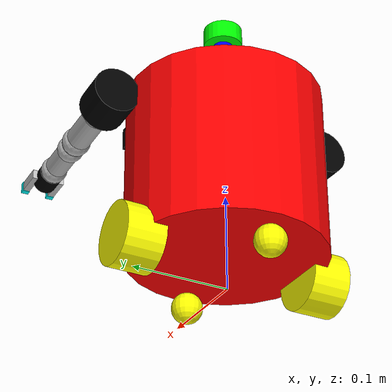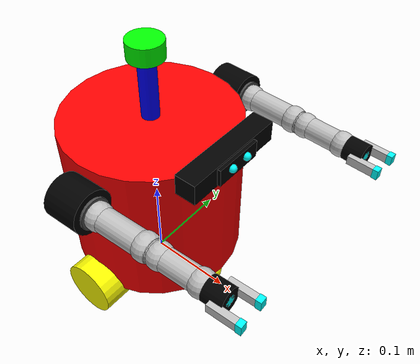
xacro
<?xml version="1.0"?>
<robot xmlns:xacro="http://www.ros.org/wiki/xacro" name="fishbot">

<!-- 找到share目录下的该包:$(find robot_rl_description) -->

<!-- 通用颜色 -->
<xacro:include filename="$(find robot_rl_description)/urdf/fishbot/common/common_colors.xacro"/>

<!-- 基座base部分 -->
<xacro:include filename="$(find robot_rl_description)/urdf/fishbot/base.urdf.xacro"/>
<!-- 传感器senser部分 -->
<xacro:include filename="$(find robot_rl_description)/urdf/fishbot/senser/imu.urdf.xacro"/>
<xacro:include filename="$(find robot_rl_description)/urdf/fishbot/senser/laser.urdf.xacro"/>
<xacro:include filename="$(find robot_rl_description)/urdf/fishbot/senser/camera.urdf.xacro"/>
<!-- 执行器actuator部分 -->
<xacro:include filename="$(find robot_rl_description)/urdf/fishbot/actuator/wheel.urdf.xacro"/>
<xacro:include filename="$(find robot_rl_description)/urdf/fishbot/actuator/caster.urdf.xacro"/>
<xacro:include filename="$(find robot_rl_description)/urdf/fishbot/actuator/manipulator.urdf.xacro"/>
<!-- 插件:双轮差速、传感器（雷达、imu） -->
<!-- ros2_control和gazebo_control同时出现，会产生冲突 -->
<xacro:include filename="$(find robot_rl_description)/urdf/fishbot/plugins/gazebo_sensor_plugin.xacro"/>
<!-- 硬件控制ros2_control -->
<xacro:include filename="$(find robot_rl_description)/urdf/fishbot/fishbot.ros2_control.xacro"/>

<!-- 基座 -->
<xacro:base_xacro length="0.18" radius="0.10"/>

<!-- 传感器 -->
<xacro:imu_xacro xyz="0.0 0.0 0.02"/>
<xacro:camera_xacro xyz="0.10 0.0 0.090"/>
<xacro:laser_xacro xyz="0.0 0.0 0.110"/>

<!-- 执行器 -->
<xacro:wheel_xacro wheel_name="left_wheel" xyz="0 0.10 -0.092" />
<xacro:wheel_xacro wheel_name="right_wheel" xyz="0 -0.10 -0.092" />
<xacro:caster_xacro caster_name="front_caster" xyz="0.08 0.0 -0.108" />
<xacro:caster_xacro caster_name="back_caster" xyz="-0.08 0.0 -0.108" />

<!-- 左右双臂：两个主要关节 + 简化机械爪 -->
<xacro:arm_macro prefix="left" side_sign="1"/>
<xacro:arm_macro prefix="right" side_sign="-1"/>

<!-- 插件:双轮差速、传感器（雷达） -->
<xacro:gazebo_sensor_plugin />

<!-- ros2_control控制 -->
<xacro:fishbot_ros2_control />

</robot>

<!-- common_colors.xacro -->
<robot xmlns:xacro="http://www.ros.org/wiki/xacro">

    <!-- 机器人颜色定义文件 Robot Color Definitions -->

    <!-- 基础颜色 Basic Colors -->
    <material name="red_material">
        <color rgba="1.0 0.0 0.0 1.0"/>
    </material>

    <material name="blue_material">
        <color rgba="0.0 0.0 1.0 1.0"/>
    </material>

    <material name="green_material">
        <color rgba="0.0 1.0 0.0 1.0"/>
    </material>

    <material name="yellow_material">
        <color rgba="1.0 1.0 0.0 1.0"/>
    </material>

    <material name="orange_material">
        <color rgba="1.0 0.5 0.0 1.0"/>
    </material>

    <material name="purple_material">
        <color rgba="0.5 0.0 0.5 1.0"/>
    </material>

    <material name="pink_material">
        <color rgba="1.0 0.5 0.8 1.0"/>
    </material>

    <material name="cyan_material">
        <color rgba="0.0 1.0 1.0 1.0"/>
    </material>

    <!-- 深色系列 Dark Colors -->
    <material name="dark_red_material">
        <color rgba="0.8 0.0 0.0 1.0"/>
    </material>

    <material name="dark_blue_material">
        <color rgba="0.0 0.0 0.8 1.0"/>
    </material>

    <material name="dark_green_material">
        <color rgba="0.0 0.8 0.0 1.0"/>
    </material>

    <material name="dark_yellow_material">
        <color rgba="0.8 0.8 0.0 1.0"/>
    </material>

    <!-- 浅色系列 Light Colors -->
    <material name="light_red_material">
        <color rgba="1.0 0.5 0.5 1.0"/>
    </material>

    <material name="light_blue_material">
        <color rgba="0.5 0.5 1.0 1.0"/>
    </material>

    <material name="light_green_material">
        <color rgba="0.5 1.0 0.5 1.0"/>
    </material>

    <material name="light_yellow_material">
        <color rgba="1.0 1.0 0.5 1.0"/>
    </material>

    <!-- 灰度系列 Gray Scale -->
    <material name="white_material">
        <color rgba="1.0 1.0 1.0 1.0"/>
    </material>

    <material name="light_gray_material">
        <color rgba="0.8 0.8 0.8 1.0"/>
    </material>

    <material name="gray_material">
        <color rgba="0.5 0.5 0.5 1.0"/>
    </material>

    <material name="dark_gray_material">
        <color rgba="0.3 0.3 0.3 1.0"/>
    </material>

    <material name="black_material">
        <color rgba="0.0 0.0 0.0 1.0"/>
    </material>

    <!-- 金属色 Metallic Colors -->
    <material name="gold_material">
        <color rgba="1.0 0.8 0.0 1.0"/>
    </material>

    <material name="silver_material">
        <color rgba="0.75 0.75 0.75 1.0"/>
    </material>

    <material name="bronze_material">
        <color rgba="0.8 0.5 0.2 1.0"/>
    </material>

    <material name="copper_material">
        <color rgba="0.7 0.4 0.1 1.0"/>
    </material>

    <!-- 机器人专用色 Robot Specific Colors -->
    <material name="robot_base_material">
        <color rgba="0.2 0.2 0.2 1.0"/>
    </material>

    <material name="wheel_material">
        <color rgba="0.1 0.1 0.1 1.0"/>
    </material>

    <material name="sensor_material">
        <color rgba="0.0 0.3 0.8 1.0"/>
    </material>

    <material name="lidar_material">
        <color rgba="0.8 0.0 0.0 1.0"/>
    </material>

    <material name="camera_material">
        <color rgba="0.1 0.1 0.1 1.0"/>
    </material>

    <!-- 特殊颜色 Special Colors -->
    <material name="sky_blue_material">
        <color rgba="0.5 0.8 1.0 1.0"/>
    </material>

    <material name="forest_green_material">
        <color rgba="0.2 0.8 0.2 1.0"/>
    </material>

    <material name="hot_pink_material">
        <color rgba="1.0 0.4 0.7 1.0"/>
    </material>

    <material name="magenta_material">
        <color rgba="1.0 0.0 1.0 1.0"/>
    </material>

    <!-- 半透明色 Transparent Colors -->
    <material name="transparent_red_material">
        <color rgba="1.0 0.0 0.0 0.5"/>
    </material>

    <material name="transparent_blue_material">
        <color rgba="0.0 0.0 1.0 0.5"/>
    </material>

    <material name="transparent_green_material">
        <color rgba="0.0 1.0 0.0 0.5"/>
    </material>

    <material name="transparent_yellow_material">
        <color rgba="1.0 1.0 0.0 0.5"/>
    </material>

</robot>

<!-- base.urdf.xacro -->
<!-- base部分子文件 -->
<robot xmlns:xacro="http://www.ros.org/wiki/xacro">
    <xacro:include filename="$(find robot_rl_description)/urdf/fishbot/common/common_inertia.xacro"/>

    <!-- 1.基本模型添加 -->
    <xacro:macro name="base_xacro" params="length radius">
        <!-- 1.1添加base_footprint链接作为根链接 -->
        <link name="base_footprint">
            <visual>
                <origin xyz="0 0 0" rpy="0 0 0"/>
                <geometry>
                    <box size="0.001 0.001 0.001"/>
                </geometry>
            </visual>
        </link>

        <!-- 1.2添加base_joint连接base_footprint到base_link -->
        <joint name="base_joint" type="fixed">
            <parent link="base_footprint"/>
            <child link="base_link"/>
            <!-- 将除轮子外的整机整体抬高一个轮子半径，保证底盘离地 -->
            <origin xyz="0.0 0.0 ${length/2 + 0.032}" rpy="0 0 0"/>
        </joint>

        <link name="base_link">
            <visual>
                <origin xyz="0 0 0" rpy="0 0 0"/>
                <geometry>
                    <cylinder radius="${radius}" length="${length}"/>
                </geometry>
                <material name="red_material"/>
            </visual>

            <!-- 2.碰撞属性collision添加 -->
            <collision>
                <origin xyz="0 0 0" rpy="0 0 0"/>
                <geometry>
                    <cylinder radius="${radius}" length="${length}"/>
                </geometry>
                <material name="red_material"/>
            </collision>

            <!-- 3.质量和惯性属性添加 -->
            <xacro:cylinder_inertia m="1.0" r="${radius}" h="${length}"/>
        </link>

        <!-- 4.gazebo中显示，扩展URDF文件 -->
        <gazebo reference="base_link">
            <material>Gazebo/Red</material>
        </gazebo>

    </xacro:macro>
</robot>

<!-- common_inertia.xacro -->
<robot xmlns:xacro="http://ros.org/wiki/xacro">

  <xacro:macro name="box_inertia" params="l w h m">
    <inertial>
      <!-- Mass of the box -->
      <mass value="${m}" />

      <!-- Inertia tensor components -->
      <inertia
        ixx="${(m/12) * (h*h + w*w)}"
        ixy="0.0"
        ixz="0.0"
        iyy="${(m/12) * (l*l + h*h)}"
        iyz="0.0"
        izz="${(m/12) * (l*l + w*w)}" />
    </inertial>
  </xacro:macro>

  <xacro:macro name="cylinder_inertia" params="m r h">
    <inertial>
      <!-- Mass of the cylinder -->
      <mass value="${m}" />

      <!-- Inertia tensor components -->
      <inertia
        ixx="${(m/12) * (3*r*r + h*h)}"
        ixy="0"
        ixz="0"
        iyy="${(m/12) * (3*r*r + h*h)}"
        iyz="0"
        izz="${(m/2) * (r*r)}" />
    </inertial>
  </xacro:macro>

  <xacro:macro name="sphere_inertia" params="m r">
    <inertial>
      <!-- Mass of the sphere -->
      <mass value="${m}" />

      <!-- Inertia tensor components -->
      <inertia
        ixx="${(2/5) * m * (r*r)}"
        ixy="0.0"
        ixz="0.0"
        iyy="${(2/5) * m * (r*r)}"
        iyz="0.0"
        izz="${(2/5) * m * (r*r)}" />
    </inertial>
  </xacro:macro>

</robot>

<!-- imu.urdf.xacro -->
<!-- 机器人imu惯性测量模块 -->
<robot xmlns:xacro="http://www.ros.org/wiki/xacro">
    <xacro:include filename="$(find robot_rl_description)/urdf/fishbot/common/common_inertia.xacro"/>

    <!-- 1.基本模型添加 -->
    <xacro:macro name="imu_xacro" params="xyz">
        <link name="imu_link">
            <visual>
                <origin xyz="0 0 0" rpy="0 0 0"/>
                <geometry>
                    <box size="0.02 0.02 0.02"/>
                </geometry>
                <material name="black_material"/>
            </visual>

            <!-- 2.碰撞属性collision添加 -->
            <collision>
                <origin xyz="0 0 0" rpy="0 0 0"/>
                <geometry>
                    <box size="0.02 0.02 0.02"/>
                </geometry>
                <material name="black_material"/>
            </collision>

            <!-- 3.质量和惯性属性添加 -->
            <xacro:box_inertia m="0.05" w="0.02" h="0.02" l="0.02" />
        </link>

        <joint name="imu_joint" type="fixed">
            <parent link="base_link"/>
            <child link="imu_link"/>
            <origin xyz="${xyz}" rpy="0 0 0"/>
        </joint>

        <!-- 4.gazebo中显示，扩展URDF文件 -->
        <gazebo reference="imu_link">
            <material>Gazebo/Black</material>
        </gazebo>

    </xacro:macro>
</robot>

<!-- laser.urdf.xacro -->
<!-- 机器人laser雷达模块 -->
<robot xmlns:xacro="http://www.ros.org/wiki/xacro">
    <xacro:include filename="$(find robot_rl_description)/urdf/fishbot/common/common_inertia.xacro"/>

    <!-- 1.基本模型添加 -->
    <xacro:macro name="laser_xacro" params="xyz">
        <!-- 1.1雷达支撑杆 -->
        <link name="laser_cylinder_link">
            <visual>
                <origin xyz="0 0 0" rpy="0 0 0"/>
                <geometry>
                    <cylinder radius="0.01" length="0.12"/>
                </geometry>
                <material name="blue_material"/>
            </visual>

            <!-- 2.1碰撞属性collision添加 -->
            <collision>
                <origin xyz="0 0 0" rpy="0 0 0"/>
                <geometry>
                    <cylinder radius="0.01" length="0.12"/>
                </geometry>
                <material name="blue_material"/>
            </collision>

            <!-- 3.1质量和惯性属性添加 -->
            <xacro:cylinder_inertia m="0.05" r="0.01" h="0.12"/>
        </link>

        <!-- 1.2雷达 -->
        <link name="laser_link">
            <visual>
                <origin xyz="0 0 0" rpy="0 0 0"/>
                <geometry>
                    <cylinder radius="0.02" length="0.02"/>
                </geometry>
                <material name="green_material"/>
            </visual>

            <!-- 2.2碰撞属性collision添加 -->
            <collision>
                <origin xyz="0 0 0" rpy="0 0 0"/>
                <geometry>
                    <cylinder radius="0.02" length="0.02"/>
                </geometry>
                <material name="green_material"/>
            </collision>

            <!-- 3.2质量和惯性属性添加 -->
            <xacro:cylinder_inertia m="0.10" r="0.02" h="0.02"/>
        </link>

        <!-- 4.1雷达固定到支撑杆上 -->
        <joint name="laser_joint" type="fixed">
            <parent link="laser_cylinder_link"/>
            <child link="laser_link"/>
            <origin xyz="0.0 0.0 0.06" rpy="0 0 0"/>
        </joint>

        <!-- 4.2雷达支撑杆固定到base_link -->
        <joint name="laser_cylinder_joint" type="fixed">
            <parent link="base_link"/>
            <child link="laser_cylinder_link"/>
            <!-- 用户自定义组装  雷达+雷达支撑杆的位置：${xyz}  -->
            <origin xyz="${xyz}" rpy="0 0 0"/>
        </joint>

        <!-- 5.gazebo中显示，扩展URDF文件 -->
        <gazebo reference="laser_cylinder_link">
            <material>Gazebo/Blue</material>
        </gazebo>
        <gazebo reference="laser_link">
            <material>Gazebo/Green</material>
        </gazebo>

    </xacro:macro>
</robot>

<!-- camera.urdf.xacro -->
<!-- 机器人camera相机模块 -->
<robot xmlns:xacro="http://www.ros.org/wiki/xacro">
    <xacro:include filename="$(find robot_rl_description)/urdf/fishbot/common/common_inertia.xacro"/>

    <!-- 1.基本模型添加 -->
    <xacro:macro name="camera_xacro" params="xyz">
        <link name="camera_link">
            <visual>
                <origin xyz="0 0 0" rpy="0 0 0"/>
                <geometry>
                    <box size="0.024 0.12 0.024"/>
                </geometry>
                <material name="black_material"/>
            </visual>

            <!-- 2.碰撞属性collision添加 -->
            <collision>
                <origin xyz="0 0 0" rpy="0 0 0"/>
                <geometry>
                    <box size="0.024 0.12 0.024"/>
                </geometry>
                <material name="black_material"/>
            </collision>

            <!-- 3.质量和惯性属性添加 -->
            <xacro:box_inertia m="0.1" w="0.024" l="0.12" h="0.024" />
        </link>

        <!-- 4.深度相机辅助link -->
        <link name="camera_optical_link"></link>

        <!-- 5.1 相机与底盘固定关节 -->
        <joint name="camera_joint" type="fixed">
            <parent link="base_link"/>
            <child link="camera_link"/>
            <origin xyz="${xyz}" rpy="0 0 0"/>
        </joint>

        <!-- 5.2 相机与辅助坐标系固定关节 -->
        <joint name="camera_optical_joint" type="fixed">
            <parent link="camera_link"/>
            <child link="camera_optical_link"/>
            <!-- 通过旋转修正坐标系，使其符合 ROS 相机标准坐标系 -->
            <origin xyz="0 0 0" rpy="${-pi/2} 0.0 ${-pi/2}"/>
        </joint>

        <!-- 6.gazebo中显示，扩展URDF文件 -->
        <gazebo reference="camera_link">
            <material>Gazebo/Black</material>
        </gazebo>

        <!-- 前脸面板，只做视觉，不增加碰撞，便于挂双眼图案 -->
        <link name="camera_face_link">
            <visual>
                <origin xyz="0 0 0" rpy="0 0 0"/>
                <geometry>
                    <box size="0.004 0.056 0.020"/>
                </geometry>
                <material name="black_material"/>
            </visual>
            <xacro:box_inertia m="0.002" w="0.004" l="0.056" h="0.020"/>
        </link>
        <joint name="camera_face_joint" type="fixed">
            <parent link="camera_link"/>
            <child link="camera_face_link"/>
            <origin xyz="0.014 0 0" rpy="0 0 0"/>
        </joint>
        <gazebo reference="camera_face_link">
            <material>Gazebo/Black</material>
        </gazebo>

        <link name="camera_eye_left_link">
            <visual>
                <origin xyz="0 0 0" rpy="0 0 0"/>
                <geometry>
                    <sphere radius="0.0045"/>
                </geometry>
                <material name="cyan_material"/>
            </visual>
            <xacro:sphere_inertia m="0.0008" r="0.0045"/>
        </link>
        <joint name="camera_eye_left_joint" type="fixed">
            <parent link="camera_face_link"/>
            <child link="camera_eye_left_link"/>
            <origin xyz="0.003 0.011 0.002" rpy="0 0 0"/>
        </joint>
        <gazebo reference="camera_eye_left_link">
            <material>Gazebo/Cyan</material>
        </gazebo>

        <link name="camera_eye_right_link">
            <visual>
                <origin xyz="0 0 0" rpy="0 0 0"/>
                <geometry>
                    <sphere radius="0.0045"/>
                </geometry>
                <material name="cyan_material"/>
            </visual>
            <xacro:sphere_inertia m="0.0008" r="0.0045"/>
        </link>
        <joint name="camera_eye_right_joint" type="fixed">
            <parent link="camera_face_link"/>
            <child link="camera_eye_right_link"/>
            <origin xyz="0.003 -0.011 0.002" rpy="0 0 0"/>
        </joint>
        <gazebo reference="camera_eye_right_link">
            <material>Gazebo/Cyan</material>
        </gazebo>

    </xacro:macro>
</robot>

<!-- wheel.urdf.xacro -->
<!-- 机器人wheel车轮模块 -->
<robot xmlns:xacro="http://www.ros.org/wiki/xacro">
    <xacro:include filename="$(find robot_rl_description)/urdf/fishbot/common/common_inertia.xacro"/>

    <!-- 1.基本模型添加 -->
    <xacro:macro name="wheel_xacro" params="wheel_name xyz">
        <link name="${wheel_name}_link">
            <visual>
            <!-- 旋转90度 -->
                <origin xyz="0 0 0" rpy="1.57079 0 0"/>
                <geometry>
                    <cylinder radius="0.032" length="0.04"/>
                </geometry>
                <material name="yellow_material"/>
            </visual>

            <!-- 2.碰撞属性collision添加 -->
            <collision>
                <origin xyz="0 0 0" rpy="1.57079 0 0"/>
                <geometry>
                    <cylinder radius="0.032" length="0.04"/>
                </geometry>
                <material name="yellow_material"/>
            </collision>

            <!-- 3.质量和惯性属性添加 -->
            <xacro:cylinder_inertia m="0.05" r="0.032" h="0.04"/>
        </link>

        <joint name="${wheel_name}_joint" type="continuous">
            <parent link="base_link"/>
            <child link="${wheel_name}_link"/>
            <origin xyz="${xyz}" rpy="0 0 0"/>
            <!-- 绕哪个轴旋转:y轴 -->
            <axis xyz="0 1 0"/>
        </joint>

        <!-- 4.gazebo中显示，扩展URDF文件——给车轮添加物理属性(以下属性gazebo中默认为1.0) -->
        <gazebo reference="${wheel_name}_link">
            <material>Gazebo/Yellow</material>
            <!-- 切向摩擦系数 -->
            <mu1 value="20.0"/>
            <!-- 法向摩擦系数 -->
            <mu2 value="20.0"/>
            <!-- 接触刚度系数 -->
            <kp value="1000000000.0"/>
            <!-- 接触阻尼系数 -->
            <kd value="1.0"/>
        </gazebo>

    </xacro:macro>
</robot>

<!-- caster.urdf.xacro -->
<!-- 机器人caster万向轮模块 -->
<robot xmlns:xacro="http://www.ros.org/wiki/xacro">
    <xacro:include filename="$(find robot_rl_description)/urdf/fishbot/common/common_inertia.xacro"/>

    <!-- 1.基本模型添加 -->
    <xacro:macro name="caster_xacro" params="caster_name xyz">
        <link name="${caster_name}_link">
            <visual>
                <origin xyz="0 0 0" rpy="0 0 0"/>
                <geometry>
                    <sphere radius="0.016"/>
                </geometry>
                <material name="yellow_material"/>
            </visual>

            <!-- 2.碰撞属性collision添加 -->
            <collision>
                <origin xyz="0 0 0" rpy="0 0 0"/>
                <geometry>
                    <sphere radius="0.016"/>
                </geometry>
                <material name="yellow_material"/>
            </collision>

            <!-- 3.质量和惯性属性添加 -->
            <xacro:sphere_inertia m="0.05" r="0.016" />
        </link>

        <joint name="${caster_name}_joint" type="fixed">
            <parent link="base_link"/>
            <child link="${caster_name}_link"/>
            <origin xyz="${xyz}" rpy="0 0 0"/>
        </joint>

        <!-- 4.gazebo中显示，扩展URDF文件 -->
        <gazebo reference="${caster_name}_link">
            <material>Gazebo/Yellow</material>
            <!-- 切向摩擦系数 -->
            <mu1 value="0.0"/>
            <!-- 法向摩擦系数 -->
            <mu2 value="0.0"/>
            <!-- 接触刚度系数 -->
            <kp value="1000000000.0"/>
            <!-- 接触阻尼系数 -->
            <kd value="1.0"/>
        </gazebo>

    </xacro:macro>
</robot>

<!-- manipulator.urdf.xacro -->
<!-- 左右双臂：两主关节 + 两指平行夹爪 -->
<robot xmlns:xacro="http://www.ros.org/wiki/xacro">
    <xacro:include filename="$(find robot_rl_description)/urdf/fishbot/common/common_inertia.xacro"/>

    <!-- 肩部安装座，嵌入躯干侧壁 -->
    <xacro:property name="shoulder_socket_length" value="0.040"/>
    <xacro:property name="shoulder_socket_radius" value="0.024"/>
    <xacro:property name="shoulder_socket_collision_radius" value="0.016"/>
    <xacro:property name="shoulder_socket_collision_length" value="0.024"/>

    <!-- 两段主臂 -->
    <xacro:property name="upper_arm_length" value="0.074"/>
    <xacro:property name="upper_arm_radius" value="0.013"/>
    <xacro:property name="forearm_length" value="0.062"/>
    <xacro:property name="forearm_radius" value="0.012"/>

    <!-- 两指夹爪 -->
    <xacro:property name="gripper_base_length" value="0.022"/>
    <xacro:property name="gripper_base_radius" value="0.013"/>
    <xacro:property name="finger_length" value="0.034"/>
    <xacro:property name="finger_width" value="0.007"/>
    <xacro:property name="finger_height" value="0.010"/>
    <xacro:property name="finger_opening" value="0.014"/>
    <xacro:property name="finger_travel" value="0.010"/>

    <xacro:macro name="arm_segment_link" params="name length mass material gazebo_material radius">
        <link name="${name}">
            <visual>
                <origin xyz="${length/2} 0 0" rpy="0 1.57079 0"/>
                <geometry>
                    <cylinder radius="${radius}" length="${length}"/>
                </geometry>
                <material name="${material}"/>
            </visual>
            <visual>
                <origin xyz="0.008 0 0" rpy="0 0 0"/>
                <geometry>
                    <sphere radius="${radius + 0.002}"/>
                </geometry>
                <material name="${material}"/>
            </visual>
            <visual>
                <origin xyz="${length - 0.008} 0 0" rpy="0 0 0"/>
                <geometry>
                    <sphere radius="${radius + 0.002}"/>
                </geometry>
                <material name="${material}"/>
            </visual>
            <collision>
                <origin xyz="${length/2} 0 0" rpy="0 1.57079 0"/>
                <geometry>
                    <cylinder radius="${radius}" length="${length}"/>
                </geometry>
            </collision>
            <xacro:cylinder_inertia m="${mass}" r="${radius}" h="${length}"/>
        </link>
        <gazebo reference="${name}">
            <material>${gazebo_material}</material>
            <selfCollide>false</selfCollide>
            <!-- Position-controlled arms must not fall before their controller
                 receives its first trajectory during simulator startup. -->
            <gravity>false</gravity>
        </gazebo>
    </xacro:macro>

    <xacro:macro name="gripper_base_link_macro" params="name">
        <link name="${name}">
            <visual>
                <origin xyz="0.010 0 0" rpy="0 1.57079 0"/>
                <geometry>
                    <cylinder radius="${gripper_base_radius}" length="${gripper_base_length}"/>
                </geometry>
                <material name="black_material"/>
            </visual>
            <visual>
                <origin xyz="0.016 0 0" rpy="0 1.57079 0"/>
                <geometry>
                    <cylinder radius="0.006" length="0.010"/>
                </geometry>
                <material name="cyan_material"/>
            </visual>
            <collision>
                <origin xyz="0.010 0 0" rpy="0 1.57079 0"/>
                <geometry>
                    <cylinder radius="${gripper_base_radius}" length="${gripper_base_length}"/>
                </geometry>
            </collision>
            <xacro:cylinder_inertia m="0.026" r="${gripper_base_radius}" h="${gripper_base_length}"/>
        </link>
    </xacro:macro>

    <xacro:macro name="finger_link" params="name">
        <link name="${name}">
            <visual>
                <origin xyz="0.017 0 0" rpy="0 0 0"/>
                <geometry>
                    <box size="${finger_length} ${finger_width} ${finger_height}"/>
                </geometry>
                <material name="silver_material"/>
            </visual>
            <visual>
                <origin xyz="0.032 0 0" rpy="0 0 0"/>
                <geometry>
                    <box size="0.006 ${finger_width * 1.1} ${finger_height * 1.1}"/>
                </geometry>
                <material name="cyan_material"/>
            </visual>
            <collision>
                <origin xyz="0.017 0 0" rpy="0 0 0"/>
                <geometry>
                    <box size="${finger_length} ${finger_width} ${finger_height}"/>
                </geometry>
            </collision>
            <xacro:box_inertia m="0.010" l="${finger_length}" w="${finger_width}" h="${finger_height}"/>
        </link>
        <gazebo reference="${name}">
            <material>Gazebo/DarkGrey</material>
            <selfCollide>false</selfCollide>
            <gravity>false</gravity>
        </gazebo>
    </xacro:macro>

    <xacro:macro name="arm_macro" params="prefix side_sign">
        <link name="${prefix}_shoulder_socket_link">
            <visual>
                <origin xyz="0 0 0" rpy="0 1.57079 0"/>
                <geometry>
                    <cylinder radius="${shoulder_socket_radius}" length="${shoulder_socket_length}"/>
                </geometry>
                <material name="black_material"/>
            </visual>
            <visual>
                <origin xyz="0.006 0 0" rpy="0 1.57079 0"/>
                <geometry>
                    <cylinder radius="0.017" length="0.034"/>
                </geometry>
                <material name="dark_gray_material"/>
            </visual>
            <visual>
                <origin xyz="0.017 0 0" rpy="0 1.57079 0"/>
                <geometry>
                    <cylinder radius="0.010" length="0.006"/>
                </geometry>
                <material name="cyan_material"/>
            </visual>
            <collision>
                <origin xyz="0 0 0" rpy="0 1.57079 0"/>
                <geometry>
                    <cylinder radius="${shoulder_socket_collision_radius}" length="${shoulder_socket_collision_length}"/>
                </geometry>
            </collision>
            <xacro:cylinder_inertia m="0.032" r="${shoulder_socket_collision_radius}" h="${shoulder_socket_collision_length}"/>
        </link>
        <joint name="${prefix}_arm_mount_joint" type="fixed">
            <parent link="base_link"/>
            <child link="${prefix}_shoulder_socket_link"/>
            <!-- 肩座顶面与躯干顶面齐平，并向躯干内侧贴合 -->
            <origin xyz="0.018 ${side_sign * 0.12} 0.066" rpy="0 0 ${side_sign * -0.04}"/>
        </joint>
        <gazebo reference="${prefix}_shoulder_socket_link">
            <material>Gazebo/DarkGrey</material>
            <selfCollide>false</selfCollide>
        </gazebo>

        <joint name="${prefix}_shoulder_joint" type="revolute">
            <parent link="${prefix}_shoulder_socket_link"/>
            <child link="${prefix}_upper_arm_link"/>
            <origin xyz="${shoulder_socket_length / 2} 0 0" rpy="0 0 0"/>
            <axis xyz="0 1 0"/>
            <limit lower="-0.95" upper="1.05" effort="3.5" velocity="1.2"/>
            <dynamics damping="0.20" friction="0.04"/>
        </joint>
        <xacro:arm_segment_link name="${prefix}_upper_arm_link" length="${upper_arm_length}" mass="0.034" material="silver_material" gazebo_material="Gazebo/Silver" radius="${upper_arm_radius}"/>

        <joint name="${prefix}_elbow_joint" type="revolute">
            <parent link="${prefix}_upper_arm_link"/>
            <child link="${prefix}_forearm_link"/>
            <origin xyz="${upper_arm_length} 0 0" rpy="0 0 0"/>
            <axis xyz="0 1 0"/>
            <limit lower="-1.10" upper="1.10" effort="2.8" velocity="1.2"/>
            <dynamics damping="0.18" friction="0.035"/>
        </joint>
        <xacro:arm_segment_link name="${prefix}_forearm_link" length="${forearm_length}" mass="0.028" material="silver_material" gazebo_material="Gazebo/Silver" radius="${forearm_radius}"/>

        <xacro:gripper_base_link_macro name="${prefix}_gripper_base_link"/>
        <joint name="${prefix}_gripper_mount_joint" type="fixed">
            <parent link="${prefix}_forearm_link"/>
            <child link="${prefix}_gripper_base_link"/>
            <origin xyz="${forearm_length} 0 0" rpy="0 0 0"/>
        </joint>
        <gazebo reference="${prefix}_gripper_base_link">
            <material>Gazebo/Black</material>
            <selfCollide>false</selfCollide>
            <gravity>false</gravity>
        </gazebo>

        <joint name="${prefix}_gripper_left_finger_joint" type="prismatic">
            <parent link="${prefix}_gripper_base_link"/>
            <child link="${prefix}_gripper_left_finger_link"/>
            <origin xyz="0.009 ${finger_opening} 0.0" rpy="0 0 0"/>
            <axis xyz="0 -1 0"/>
            <limit lower="0.0" upper="${finger_travel}" effort="4.0" velocity="0.05"/>
            <dynamics damping="0.12" friction="0.02"/>
        </joint>
        <xacro:finger_link name="${prefix}_gripper_left_finger_link"/>
        <gazebo reference="${prefix}_gripper_left_finger_link">
            <material>Gazebo/DarkGrey</material>
            <mu1>2.0</mu1>
            <mu2>2.0</mu2>
            <kp>150000.0</kp>
            <kd>1.0</kd>
            <selfCollide>false</selfCollide>
            <gravity>false</gravity>
        </gazebo>

        <joint name="${prefix}_gripper_right_finger_joint" type="prismatic">
            <parent link="${prefix}_gripper_base_link"/>
            <child link="${prefix}_gripper_right_finger_link"/>
            <origin xyz="0.009 ${-finger_opening} 0.0" rpy="0 0 0"/>
            <axis xyz="0 1 0"/>
            <limit lower="0.0" upper="${finger_travel}" effort="4.0" velocity="0.05"/>
            <dynamics damping="0.12" friction="0.02"/>
        </joint>
        <xacro:finger_link name="${prefix}_gripper_right_finger_link"/>
        <gazebo reference="${prefix}_gripper_right_finger_link">
            <material>Gazebo/DarkGrey</material>
            <mu1>2.0</mu1>
            <mu2>2.0</mu2>
            <kp>150000.0</kp>
            <kd>1.0</kd>
            <selfCollide>false</selfCollide>
            <gravity>false</gravity>
        </gazebo>
    </xacro:macro>
</robot>
